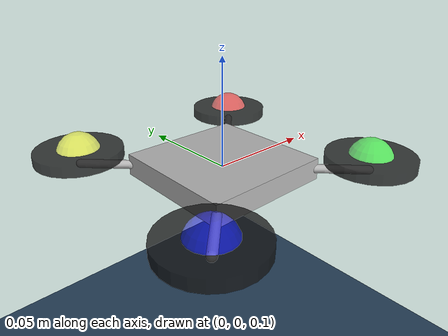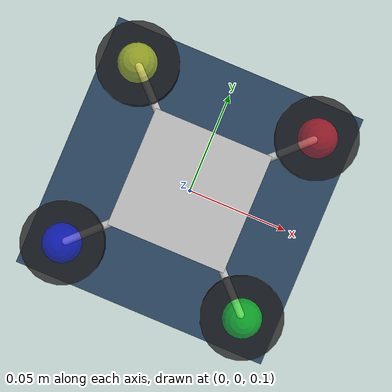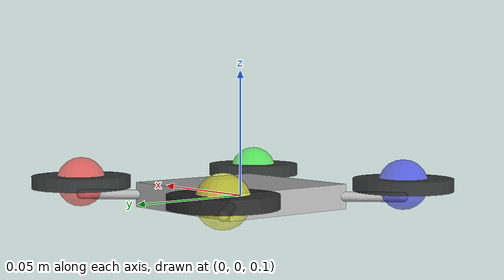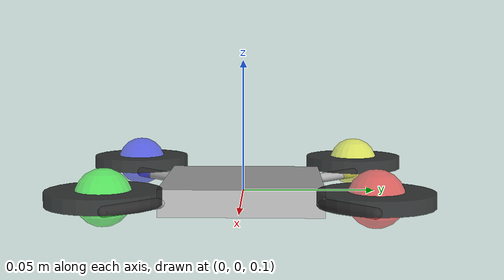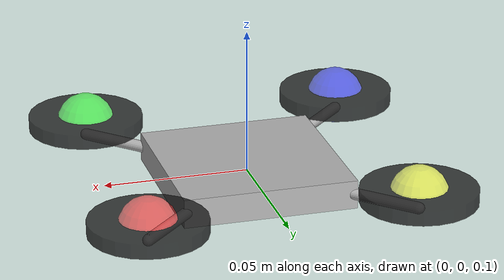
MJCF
<?xml version="1.0" encoding="utf-8"?>
<mujoco model="crazyflie">
  <compiler angle="radian" coordinate="local" inertiafromgeom="true" />

  <option timestep="0.01" integrator="RK4" />

  <default>
    <joint limited="true" armature="0.001" damping="0.1" />
    <geom condim="3" density="5.0" friction="1 0.5 0.5" margin="0.001" />
  </default>

  <asset>
    <texture type="skybox" builtin="gradient" rgb1="0.3 0.5 0.7" rgb2="0 0 0" width="512" height="512" />
    <texture name="texplane" type="2d" builtin="checker" rgb1="0.2 0.3 0.4" rgb2="0.1 0.2 0.3" width="512" height="512" />
    <material name="matplane" texture="texplane" texrepeat="1 1" reflectance="0.2" />
  </asset>

  <worldbody>
    <light directional="true" diffuse="0.8 0.8 0.8" specular="0.2 0.2 0.2" pos="0 0 3" dir="0 0 -1" />
    <geom name="floor" type="plane" material="matplane" pos="0 0 0" size="5 5 0.1" />

    <body name="quadrotor" pos="0 0 0.1">
      <joint name="root" type="free" />

      <!-- Main body -->
      <geom name="body" type="box" size="0.03 0.03 0.005" rgba="0.7 0.7 0.7 1" mass="0.01" />

      <!-- Arms -->
      <geom name="arm1" type="capsule" fromto="0 0 0  0.046 0.046 0" size="0.002" rgba="0.7 0.7 0.7 1" mass="0.001" />
      <geom name="arm2" type="capsule" fromto="0 0 0  0.046 -0.046 0" size="0.002" rgba="0.7 0.7 0.7 1" mass="0.001" />
      <geom name="arm3" type="capsule" fromto="0 0 0  -0.046 -0.046 0" size="0.002" rgba="0.7 0.7 0.7 1" mass="0.001" />
      <geom name="arm4" type="capsule" fromto="0 0 0  -0.046 0.046 0" size="0.002" rgba="0.7 0.7 0.7 1" mass="0.001" />

      <!-- Rotors -->
      <geom name="rotor1" pos="0.046 0.046 0.005" type="cylinder" size="0.02 0.0025" rgba="0.1 0.1 0.1 0.8" mass="0.001" />
      <geom name="rotor2" pos="0.046 -0.046 0.005" type="cylinder" size="0.02 0.0025" rgba="0.1 0.1 0.1 0.8" mass="0.001" />
      <geom name="rotor3" pos="-0.046 -0.046 0.005" type="cylinder" size="0.02 0.0025" rgba="0.1 0.1 0.1 0.8" mass="0.001" />
      <geom name="rotor4" pos="-0.046 0.046 0.005" type="cylinder" size="0.02 0.0025" rgba="0.1 0.1 0.1 0.8" mass="0.001" />

      <!-- Sensor sites -->
      <site name="imu" pos="0 0 0" size="0.01 0.01 0.01" rgba="1 0 0 0" />
      <site name="camera" pos="0.03 0 0" size="0.005 0.01 0.01" rgba="0 0 1 0" />
      <site name="force1" pos="0.046 0.046 0.005" size="0.01" rgba="1 0 0 0.5" />
      <site name="force2" pos="0.046 -0.046 0.005" size="0.01" rgba="0 1 0 0.5" />
      <site name="force3" pos="-0.046 -0.046 0.005" size="0.01" rgba="0 0 1 0.5" />
      <site name="force4" pos="-0.046 0.046 0.005" size="0.01" rgba="1 1 0 0.5" />
    </body>

    <camera name="rgbd" pos="0 -0.5 0.5" xyaxes="1 0 0 0 0.7 0.7" />
  </worldbody>

  <actuator>
    <motor name="motor1" site="force1" gear="0.1" ctrllimited="true" ctrlrange="0 1" />
    <motor name="motor2" site="force2" gear="0.1" ctrllimited="true" ctrlrange="0 1" />
    <motor name="motor3" site="force3" gear="0.1" ctrllimited="true" ctrlrange="0 1" />
    <motor name="motor4" site="force4" gear="0.1" ctrllimited="true" ctrlrange="0 1" />
  </actuator>

  <sensor>
    <accelerometer name="accelerometer" site="imu" />
    <gyro name="gyro" site="imu" />
    <framequat name="orientation" objtype="site" objname="imu" />
    <camera name="rgb" site="camera" />
    <rangefinder name="depth" site="camera" />
  </sensor>
</mujoco>
